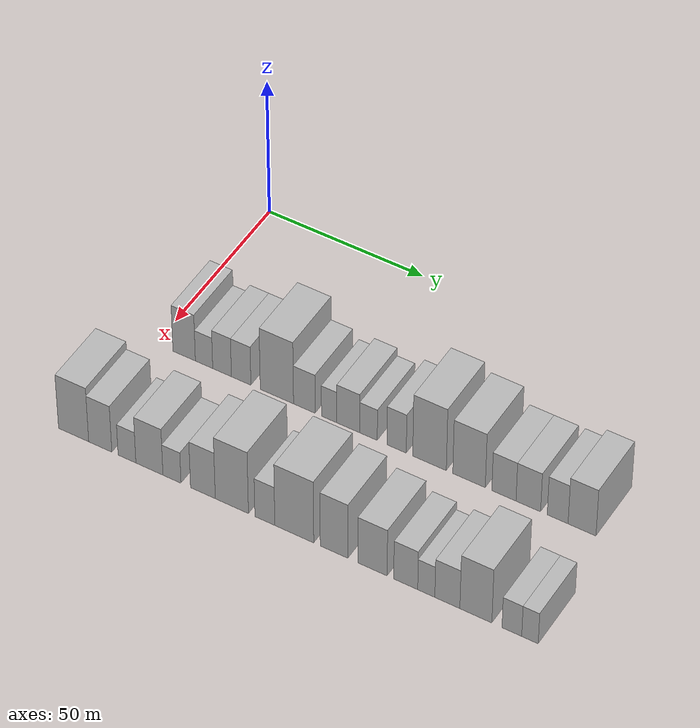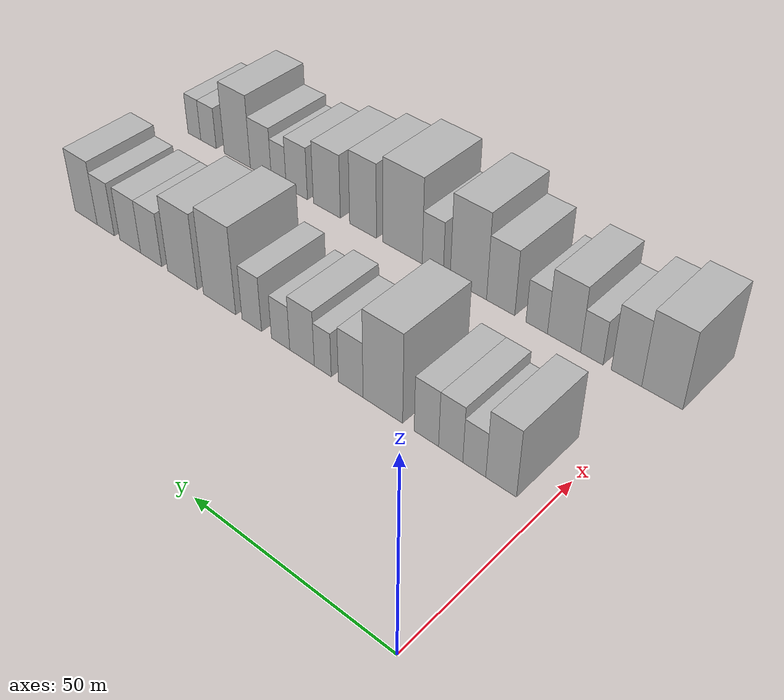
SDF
<sdf version="1.6">
 <world name="default">
  <model name="building_34">
   <static>1</static>
   <pose>50.0000 9.1386 0 0.000000 0.000000 0.000000</pose>
   <link name="link">
    <pose>0 0 9.00 0 0 0</pose>
    <collision name="collision"><geometry><box><size>20.0000 7.2633 18.0000</size></box></geometry></collision>
    <visual name="visual">
     <cast_shadows>0</cast_shadows>
     <geometry><box><size>20.0000 7.2633 18.0000</size></box></geometry>
     <material>
      <script>
       <uri>model://HANNAS_wall/materials/scripts</uri>
       <uri>model://HANNAS_wall/materials/textures</uri>
       <name>vrc/HANNAS_wall</name>
      </script>
     </material>
    </visual>
   </link>
  </model>
  <model name="building_35">
   <static>1</static>
   <pose>50.0000 15.5627 0 0.000000 0.000000 0.000000</pose>
   <link name="link">
    <pose>0 0 6.00 0 0 0</pose>
    <collision name="collision"><geometry><box><size>20.0000 5.5849 12.0000</size></box></geometry></collision>
    <visual name="visual">
     <cast_shadows>0</cast_shadows>
     <geometry><box><size>20.0000 5.5849 12.0000</size></box></geometry>
     <material>
      <script>
       <uri>model://HANNAS_wall/materials/scripts</uri>
       <uri>model://HANNAS_wall/materials/textures</uri>
       <name>vrc/HANNAS_wall</name>
      </script>
     </material>
    </visual>
   </link>
  </model>
  <model name="building_36">
   <static>1</static>
   <pose>50.0000 21.3634 0 0.000000 0.000000 0.000000</pose>
   <link name="link">
    <pose>0 0 7.50 0 0 0</pose>
    <collision name="collision"><geometry><box><size>20.0000 6.0165 15.0000</size></box></geometry></collision>
    <visual name="visual">
     <cast_shadows>0</cast_shadows>
     <geometry><box><size>20.0000 6.0165 15.0000</size></box></geometry>
     <material>
      <script>
       <uri>model://HANNAS_wall/materials/scripts</uri>
       <uri>model://HANNAS_wall/materials/textures</uri>
       <name>vrc/HANNAS_wall</name>
      </script>
     </material>
    </visual>
   </link>
  </model>
  <model name="building_37">
   <static>1</static>
   <pose>50.0000 27.4844 0 0.000000 0.000000 0.000000</pose>
   <link name="link">
    <pose>0 0 7.50 0 0 0</pose>
    <collision name="collision"><geometry><box><size>20.0000 6.2254 15.0000</size></box></geometry></collision>
    <visual name="visual">
     <cast_shadows>0</cast_shadows>
     <geometry><box><size>20.0000 6.2254 15.0000</size></box></geometry>
     <material>
      <script>
       <uri>model://HANNAS_wall/materials/scripts</uri>
       <uri>model://HANNAS_wall/materials/textures</uri>
       <name>vrc/HANNAS_wall</name>
      </script>
     </material>
    </visual>
   </link>
  </model>
  <model name="building_38">
   <static>1</static>
   <pose>50.0000 38.8776 0 0.000000 0.000000 0.000000</pose>
   <link name="link">
    <pose>0 0 12.00 0 0 0</pose>
    <collision name="collision"><geometry><box><size>20.0000 10.5609 24.0000</size></box></geometry></collision>
    <visual name="visual">
     <cast_shadows>0</cast_shadows>
     <geometry><box><size>20.0000 10.5609 24.0000</size></box></geometry>
     <material>
      <script>
       <uri>model://HANNAS_wall/materials/scripts</uri>
       <uri>model://HANNAS_wall/materials/textures</uri>
       <name>vrc/HANNAS_wall</name>
      </script>
     </material>
    </visual>
   </link>
  </model>
  <model name="building_39">
   <static>1</static>
   <pose>50.0000 47.5717 0 0.000000 0.000000 0.000000</pose>
   <link name="link">
    <pose>0 0 7.50 0 0 0</pose>
    <collision name="collision"><geometry><box><size>20.0000 6.8272 15.0000</size></box></geometry></collision>
    <visual name="visual">
     <cast_shadows>0</cast_shadows>
     <geometry><box><size>20.0000 6.8272 15.0000</size></box></geometry>
     <material>
      <script>
       <uri>model://HANNAS_wall/materials/scripts</uri>
       <uri>model://HANNAS_wall/materials/textures</uri>
       <name>vrc/HANNAS_wall</name>
      </script>
     </material>
    </visual>
   </link>
  </model>
  <model name="building_40">
   <static>1</static>
   <pose>50.0000 55.4066 0 0.000000 0.000000 0.000000</pose>
   <link name="link">
    <pose>0 0 6.00 0 0 0</pose>
    <collision name="collision"><geometry><box><size>20.0000 4.8426 12.0000</size></box></geometry></collision>
    <visual name="visual">
     <cast_shadows>0</cast_shadows>
     <geometry><box><size>20.0000 4.8426 12.0000</size></box></geometry>
     <material>
      <script>
       <uri>model://HANNAS_wall/materials/scripts</uri>
       <uri>model://HANNAS_wall/materials/textures</uri>
       <name>vrc/HANNAS_wall</name>
      </script>
     </material>
    </visual>
   </link>
  </model>
  <model name="building_41">
   <static>1</static>
   <pose>50.0000 61.4080 0 0.000000 0.000000 0.000000</pose>
   <link name="link">
    <pose>0 0 7.50 0 0 0</pose>
    <collision name="collision"><geometry><box><size>20.0000 7.1603 15.0000</size></box></geometry></collision>
    <visual name="visual">
     <cast_shadows>0</cast_shadows>
     <geometry><box><size>20.0000 7.1603 15.0000</size></box></geometry>
     <material>
      <script>
       <uri>model://HANNAS_wall/materials/scripts</uri>
       <uri>model://HANNAS_wall/materials/textures</uri>
       <name>vrc/HANNAS_wall</name>
      </script>
     </material>
    </visual>
   </link>
  </model>
  <model name="building_42">
   <static>1</static>
   <pose>50.0000 67.7312 0 0.000000 0.000000 0.000000</pose>
   <link name="link">
    <pose>0 0 6.00 0 0 0</pose>
    <collision name="collision"><geometry><box><size>20.0000 5.4860 12.0000</size></box></geometry></collision>
    <visual name="visual">
     <cast_shadows>0</cast_shadows>
     <geometry><box><size>20.0000 5.4860 12.0000</size></box></geometry>
     <material>
      <script>
       <uri>model://HANNAS_wall/materials/scripts</uri>
       <uri>model://HANNAS_wall/materials/textures</uri>
       <name>vrc/HANNAS_wall</name>
      </script>
     </material>
    </visual>
   </link>
  </model>
  <model name="building_43">
   <static>1</static>
   <pose>50.0000 76.4869 0 0.000000 0.000000 0.000000</pose>
   <link name="link">
    <pose>0 0 7.50 0 0 0</pose>
    <collision name="collision"><geometry><box><size>20.0000 6.0255 15.0000</size></box></geometry></collision>
    <visual name="visual">
     <cast_shadows>0</cast_shadows>
     <geometry><box><size>20.0000 6.0255 15.0000</size></box></geometry>
     <material>
      <script>
       <uri>model://HANNAS_wall/materials/scripts</uri>
       <uri>model://HANNAS_wall/materials/textures</uri>
       <name>vrc/HANNAS_wall</name>
      </script>
     </material>
    </visual>
   </link>
  </model>
  <model name="building_44">
   <static>1</static>
   <pose>50.0000 86.6789 0 0.000000 0.000000 0.000000</pose>
   <link name="link">
    <pose>0 0 12.00 0 0 0</pose>
    <collision name="collision"><geometry><box><size>20.0000 10.3585 24.0000</size></box></geometry></collision>
    <visual name="visual">
     <cast_shadows>0</cast_shadows>
     <geometry><box><size>20.0000 10.3585 24.0000</size></box></geometry>
     <material>
      <script>
       <uri>model://HANNAS_wall/materials/scripts</uri>
       <uri>model://HANNAS_wall/materials/textures</uri>
       <name>vrc/HANNAS_wall</name>
      </script>
     </material>
    </visual>
   </link>
  </model>
  <model name="building_45">
   <static>1</static>
   <pose>50.0000 98.8367 0 0.000000 0.000000 0.000000</pose>
   <link name="link">
    <pose>0 0 10.50 0 0 0</pose>
    <collision name="collision"><geometry><box><size>20.0000 9.9571 21.0000</size></box></geometry></collision>
    <visual name="visual">
     <cast_shadows>0</cast_shadows>
     <geometry><box><size>20.0000 9.9571 21.0000</size></box></geometry>
     <material>
      <script>
       <uri>model://HANNAS_wall/materials/scripts</uri>
       <uri>model://HANNAS_wall/materials/textures</uri>
       <name>vrc/HANNAS_wall</name>
      </script>
     </material>
    </visual>
   </link>
  </model>
  <model name="building_46">
   <static>1</static>
   <pose>50.0000 109.4958 0 0.000000 0.000000 0.000000</pose>
   <link name="link">
    <pose>0 0 7.50 0 0 0</pose>
    <collision name="collision"><geometry><box><size>20.0000 7.3610 15.0000</size></box></geometry></collision>
    <visual name="visual">
     <cast_shadows>0</cast_shadows>
     <geometry><box><size>20.0000 7.3610 15.0000</size></box></geometry>
     <material>
      <script>
       <uri>model://HANNAS_wall/materials/scripts</uri>
       <uri>model://HANNAS_wall/materials/textures</uri>
       <name>vrc/HANNAS_wall</name>
      </script>
     </material>
    </visual>
   </link>
  </model>
  <model name="building_47">
   <static>1</static>
   <pose>50.0000 116.9033 0 0.000000 0.000000 0.000000</pose>
   <link name="link">
    <pose>0 0 7.50 0 0 0</pose>
    <collision name="collision"><geometry><box><size>20.0000 7.4541 15.0000</size></box></geometry></collision>
    <visual name="visual">
     <cast_shadows>0</cast_shadows>
     <geometry><box><size>20.0000 7.4541 15.0000</size></box></geometry>
     <material>
      <script>
       <uri>model://HANNAS_wall/materials/scripts</uri>
       <uri>model://HANNAS_wall/materials/textures</uri>
       <name>vrc/HANNAS_wall</name>
      </script>
     </material>
    </visual>
   </link>
  </model>
  <model name="building_48">
   <static>1</static>
   <pose>50.0000 125.7696 0 0.000000 0.000000 0.000000</pose>
   <link name="link">
    <pose>0 0 7.50 0 0 0</pose>
    <collision name="collision"><geometry><box><size>20.0000 6.2784 15.0000</size></box></geometry></collision>
    <visual name="visual">
     <cast_shadows>0</cast_shadows>
     <geometry><box><size>20.0000 6.2784 15.0000</size></box></geometry>
     <material>
      <script>
       <uri>model://HANNAS_wall/materials/scripts</uri>
       <uri>model://HANNAS_wall/materials/textures</uri>
       <name>vrc/HANNAS_wall</name>
      </script>
     </material>
    </visual>
   </link>
  </model>
  <model name="building_49">
   <static>1</static>
   <pose>50.0000 133.0935 0 0.000000 0.000000 0.000000</pose>
   <link name="link">
    <pose>0 0 9.00 0 0 0</pose>
    <collision name="collision"><geometry><box><size>20.0000 8.3695 18.0000</size></box></geometry></collision>
    <visual name="visual">
     <cast_shadows>0</cast_shadows>
     <geometry><box><size>20.0000 8.3695 18.0000</size></box></geometry>
     <material>
      <script>
       <uri>model://HANNAS_wall/materials/scripts</uri>
       <uri>model://HANNAS_wall/materials/textures</uri>
       <name>vrc/HANNAS_wall</name>
      </script>
     </material>
    </visual>
   </link>
  </model>
  <model name="building_102">
   <static>1</static>
   <pose>90.0000 -0.8853 0 0.000000 0.000000 0.000000</pose>
   <link name="link">
    <pose>0 0 10.50 0 0 0</pose>
    <collision name="collision"><geometry><box><size>20.0000 9.6787 21.0000</size></box></geometry></collision>
    <visual name="visual">
     <cast_shadows>0</cast_shadows>
     <geometry><box><size>20.0000 9.6787 21.0000</size></box></geometry>
     <material>
      <script>
       <uri>model://HANNAS_wall/materials/scripts</uri>
       <uri>model://HANNAS_wall/materials/textures</uri>
       <name>vrc/HANNAS_wall</name>
      </script>
     </material>
    </visual>
   </link>
  </model>
  <model name="building_103">
   <static>1</static>
   <pose>90.0000 7.6519 0 0.000000 0.000000 0.000000</pose>
   <link name="link">
    <pose>0 0 9.00 0 0 0</pose>
    <collision name="collision"><geometry><box><size>20.0000 7.3957 18.0000</size></box></geometry></collision>
    <visual name="visual">
     <cast_shadows>0</cast_shadows>
     <geometry><box><size>20.0000 7.3957 18.0000</size></box></geometry>
     <material>
      <script>
       <uri>model://HANNAS_wall/materials/scripts</uri>
       <uri>model://HANNAS_wall/materials/textures</uri>
       <name>vrc/HANNAS_wall</name>
      </script>
     </material>
    </visual>
   </link>
  </model>
  <model name="building_104">
   <static>1</static>
   <pose>90.0000 16.1765 0 0.000000 0.000000 0.000000</pose>
   <link name="link">
    <pose>0 0 6.00 0 0 0</pose>
    <collision name="collision"><geometry><box><size>20.0000 5.6537 12.0000</size></box></geometry></collision>
    <visual name="visual">
     <cast_shadows>0</cast_shadows>
     <geometry><box><size>20.0000 5.6537 12.0000</size></box></geometry>
     <material>
      <script>
       <uri>model://HANNAS_wall/materials/scripts</uri>
       <uri>model://HANNAS_wall/materials/textures</uri>
       <name>vrc/HANNAS_wall</name>
      </script>
     </material>
    </visual>
   </link>
  </model>
  <model name="building_105">
   <static>1</static>
   <pose>90.0000 23.2852 0 0.000000 0.000000 0.000000</pose>
   <link name="link">
    <pose>0 0 9.00 0 0 0</pose>
    <collision name="collision"><geometry><box><size>20.0000 8.5636 18.0000</size></box></geometry></collision>
    <visual name="visual">
     <cast_shadows>0</cast_shadows>
     <geometry><box><size>20.0000 8.5636 18.0000</size></box></geometry>
     <material>
      <script>
       <uri>model://HANNAS_wall/materials/scripts</uri>
       <uri>model://HANNAS_wall/materials/textures</uri>
       <name>vrc/HANNAS_wall</name>
      </script>
     </material>
    </visual>
   </link>
  </model>
  <model name="building_106">
   <static>1</static>
   <pose>90.0000 30.4156 0 0.000000 0.000000 0.000000</pose>
   <link name="link">
    <pose>0 0 6.00 0 0 0</pose>
    <collision name="collision"><geometry><box><size>20.0000 5.6973 12.0000</size></box></geometry></collision>
    <visual name="visual">
     <cast_shadows>0</cast_shadows>
     <geometry><box><size>20.0000 5.6973 12.0000</size></box></geometry>
     <material>
      <script>
       <uri>model://HANNAS_wall/materials/scripts</uri>
       <uri>model://HANNAS_wall/materials/textures</uri>
       <name>vrc/HANNAS_wall</name>
      </script>
     </material>
    </visual>
   </link>
  </model>
  <model name="building_107">
   <static>1</static>
   <pose>90.0000 40.1445 0 0.000000 0.000000 0.000000</pose>
   <link name="link">
    <pose>0 0 9.00 0 0 0</pose>
    <collision name="collision"><geometry><box><size>20.0000 7.7603 18.0000</size></box></geometry></collision>
    <visual name="visual">
     <cast_shadows>0</cast_shadows>
     <geometry><box><size>20.0000 7.7603 18.0000</size></box></geometry>
     <material>
      <script>
       <uri>model://HANNAS_wall/materials/scripts</uri>
       <uri>model://HANNAS_wall/materials/textures</uri>
       <name>vrc/HANNAS_wall</name>
      </script>
     </material>
    </visual>
   </link>
  </model>
  <model name="building_108">
   <static>1</static>
   <pose>90.0000 49.1941 0 0.000000 0.000000 0.000000</pose>
   <link name="link">
    <pose>0 0 12.00 0 0 0</pose>
    <collision name="collision"><geometry><box><size>20.0000 10.3390 24.0000</size></box></geometry></collision>
    <visual name="visual">
     <cast_shadows>0</cast_shadows>
     <geometry><box><size>20.0000 10.3390 24.0000</size></box></geometry>
     <material>
      <script>
       <uri>model://HANNAS_wall/materials/scripts</uri>
       <uri>model://HANNAS_wall/materials/textures</uri>
       <name>vrc/HANNAS_wall</name>
      </script>
     </material>
    </visual>
   </link>
  </model>
  <model name="building_109">
   <static>1</static>
   <pose>90.0000 59.4452 0 0.000000 0.000000 0.000000</pose>
   <link name="link">
    <pose>0 0 7.50 0 0 0</pose>
    <collision name="collision"><geometry><box><size>20.0000 6.1631 15.0000</size></box></geometry></collision>
    <visual name="visual">
     <cast_shadows>0</cast_shadows>
     <geometry><box><size>20.0000 6.1631 15.0000</size></box></geometry>
     <material>
      <script>
       <uri>model://HANNAS_wall/materials/scripts</uri>
       <uri>model://HANNAS_wall/materials/textures</uri>
       <name>vrc/HANNAS_wall</name>
      </script>
     </material>
    </visual>
   </link>
  </model>
  <model name="building_110">
   <static>1</static>
   <pose>90.0000 68.5207 0 0.000000 0.000000 0.000000</pose>
   <link name="link">
    <pose>0 0 12.00 0 0 0</pose>
    <collision name="collision"><geometry><box><size>20.0000 11.9879 24.0000</size></box></geometry></collision>
    <visual name="visual">
     <cast_shadows>0</cast_shadows>
     <geometry><box><size>20.0000 11.9879 24.0000</size></box></geometry>
     <material>
      <script>
       <uri>model://HANNAS_wall/materials/scripts</uri>
       <uri>model://HANNAS_wall/materials/textures</uri>
       <name>vrc/HANNAS_wall</name>
      </script>
     </material>
    </visual>
   </link>
  </model>
  <model name="building_111">
   <static>1</static>
   <pose>90.0000 80.7420 0 0.000000 0.000000 0.000000</pose>
   <link name="link">
    <pose>0 0 10.50 0 0 0</pose>
    <collision name="collision"><geometry><box><size>20.0000 8.4547 21.0000</size></box></geometry></collision>
    <visual name="visual">
     <cast_shadows>0</cast_shadows>
     <geometry><box><size>20.0000 8.4547 21.0000</size></box></geometry>
     <material>
      <script>
       <uri>model://HANNAS_wall/materials/scripts</uri>
       <uri>model://HANNAS_wall/materials/textures</uri>
       <name>vrc/HANNAS_wall</name>
      </script>
     </material>
    </visual>
   </link>
  </model>
  <model name="building_112">
   <static>1</static>
   <pose>90.0000 92.4219 0 0.000000 0.000000 0.000000</pose>
   <link name="link">
    <pose>0 0 9.00 0 0 0</pose>
    <collision name="collision"><geometry><box><size>20.0000 8.9053 18.0000</size></box></geometry></collision>
    <visual name="visual">
     <cast_shadows>0</cast_shadows>
     <geometry><box><size>20.0000 8.9053 18.0000</size></box></geometry>
     <material>
      <script>
       <uri>model://HANNAS_wall/materials/scripts</uri>
       <uri>model://HANNAS_wall/materials/textures</uri>
       <name>vrc/HANNAS_wall</name>
      </script>
     </material>
    </visual>
   </link>
  </model>
  <model name="building_113">
   <static>1</static>
   <pose>90.0000 102.4912 0 0.000000 0.000000 0.000000</pose>
   <link name="link">
    <pose>0 0 7.50 0 0 0</pose>
    <collision name="collision"><geometry><box><size>20.0000 7.2332 15.0000</size></box></geometry></collision>
    <visual name="visual">
     <cast_shadows>0</cast_shadows>
     <geometry><box><size>20.0000 7.2332 15.0000</size></box></geometry>
     <material>
      <script>
       <uri>model://HANNAS_wall/materials/scripts</uri>
       <uri>model://HANNAS_wall/materials/textures</uri>
       <name>vrc/HANNAS_wall</name>
      </script>
     </material>
    </visual>
   </link>
  </model>
  <model name="building_114">
   <static>1</static>
   <pose>90.0000 108.6822 0 0.000000 0.000000 0.000000</pose>
   <link name="link">
    <pose>0 0 6.00 0 0 0</pose>
    <collision name="collision"><geometry><box><size>20.0000 5.1489 12.0000</size></box></geometry></collision>
    <visual name="visual">
     <cast_shadows>0</cast_shadows>
     <geometry><box><size>20.0000 5.1489 12.0000</size></box></geometry>
     <material>
      <script>
       <uri>model://HANNAS_wall/materials/scripts</uri>
       <uri>model://HANNAS_wall/materials/textures</uri>
       <name>vrc/HANNAS_wall</name>
      </script>
     </material>
    </visual>
   </link>
  </model>
  <model name="building_115">
   <static>1</static>
   <pose>90.0000 114.9995 0 0.000000 0.000000 0.000000</pose>
   <link name="link">
    <pose>0 0 7.50 0 0 0</pose>
    <collision name="collision"><geometry><box><size>20.0000 7.4856 15.0000</size></box></geometry></collision>
    <visual name="visual">
     <cast_shadows>0</cast_shadows>
     <geometry><box><size>20.0000 7.4856 15.0000</size></box></geometry>
     <material>
      <script>
       <uri>model://HANNAS_wall/materials/scripts</uri>
       <uri>model://HANNAS_wall/materials/textures</uri>
       <name>vrc/HANNAS_wall</name>
      </script>
     </material>
    </visual>
   </link>
  </model>
  <model name="building_116">
   <static>1</static>
   <pose>90.0000 123.5040 0 0.000000 0.000000 0.000000</pose>
   <link name="link">
    <pose>0 0 10.50 0 0 0</pose>
    <collision name="collision"><geometry><box><size>20.0000 9.5235 21.0000</size></box></geometry></collision>
    <visual name="visual">
     <cast_shadows>0</cast_shadows>
     <geometry><box><size>20.0000 9.5235 21.0000</size></box></geometry>
     <material>
      <script>
       <uri>model://HANNAS_wall/materials/scripts</uri>
       <uri>model://HANNAS_wall/materials/textures</uri>
       <name>vrc/HANNAS_wall</name>
      </script>
     </material>
    </visual>
   </link>
  </model>
  <model name="building_117">
   <static>1</static>
   <pose>90.0000 134.1806 0 0.000000 0.000000 0.000000</pose>
   <link name="link">
    <pose>0 0 6.00 0 0 0</pose>
    <collision name="collision"><geometry><box><size>20.0000 5.8296 12.0000</size></box></geometry></collision>
    <visual name="visual">
     <cast_shadows>0</cast_shadows>
     <geometry><box><size>20.0000 5.8296 12.0000</size></box></geometry>
     <material>
      <script>
       <uri>model://HANNAS_wall/materials/scripts</uri>
       <uri>model://HANNAS_wall/materials/textures</uri>
       <name>vrc/HANNAS_wall</name>
      </script>
     </material>
    </visual>
   </link>
  </model>
  <model name="building_118">
   <static>1</static>
   <pose>90.0000 139.5247 0 0.000000 0.000000 0.000000</pose>
   <link name="link">
    <pose>0 0 6.00 0 0 0</pose>
    <collision name="collision"><geometry><box><size>20.0000 4.8585 12.0000</size></box></geometry></collision>
    <visual name="visual">
     <cast_shadows>0</cast_shadows>
     <geometry><box><size>20.0000 4.8585 12.0000</size></box></geometry>
     <material>
      <script>
       <uri>model://HANNAS_wall/materials/scripts</uri>
       <uri>model://HANNAS_wall/materials/textures</uri>
       <name>vrc/HANNAS_wall</name>
      </script>
     </material>
    </visual>
   </link>
  </model>
 </world>
</sdf>
